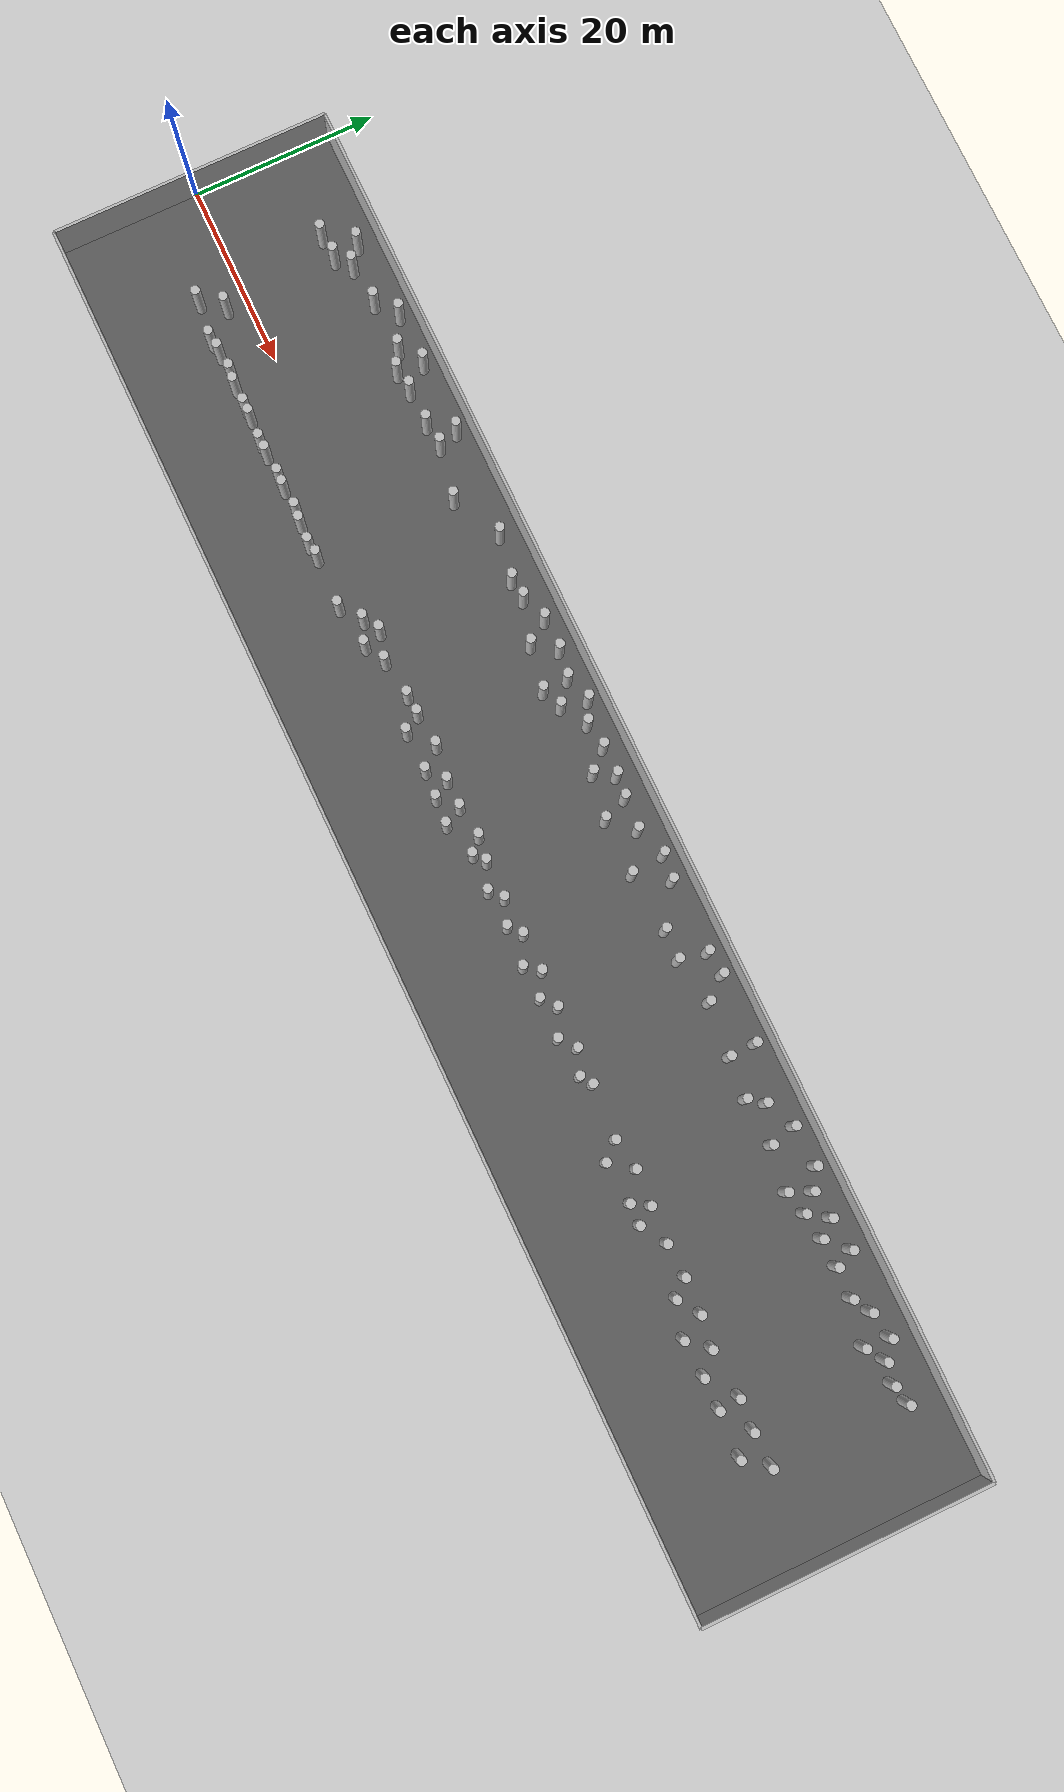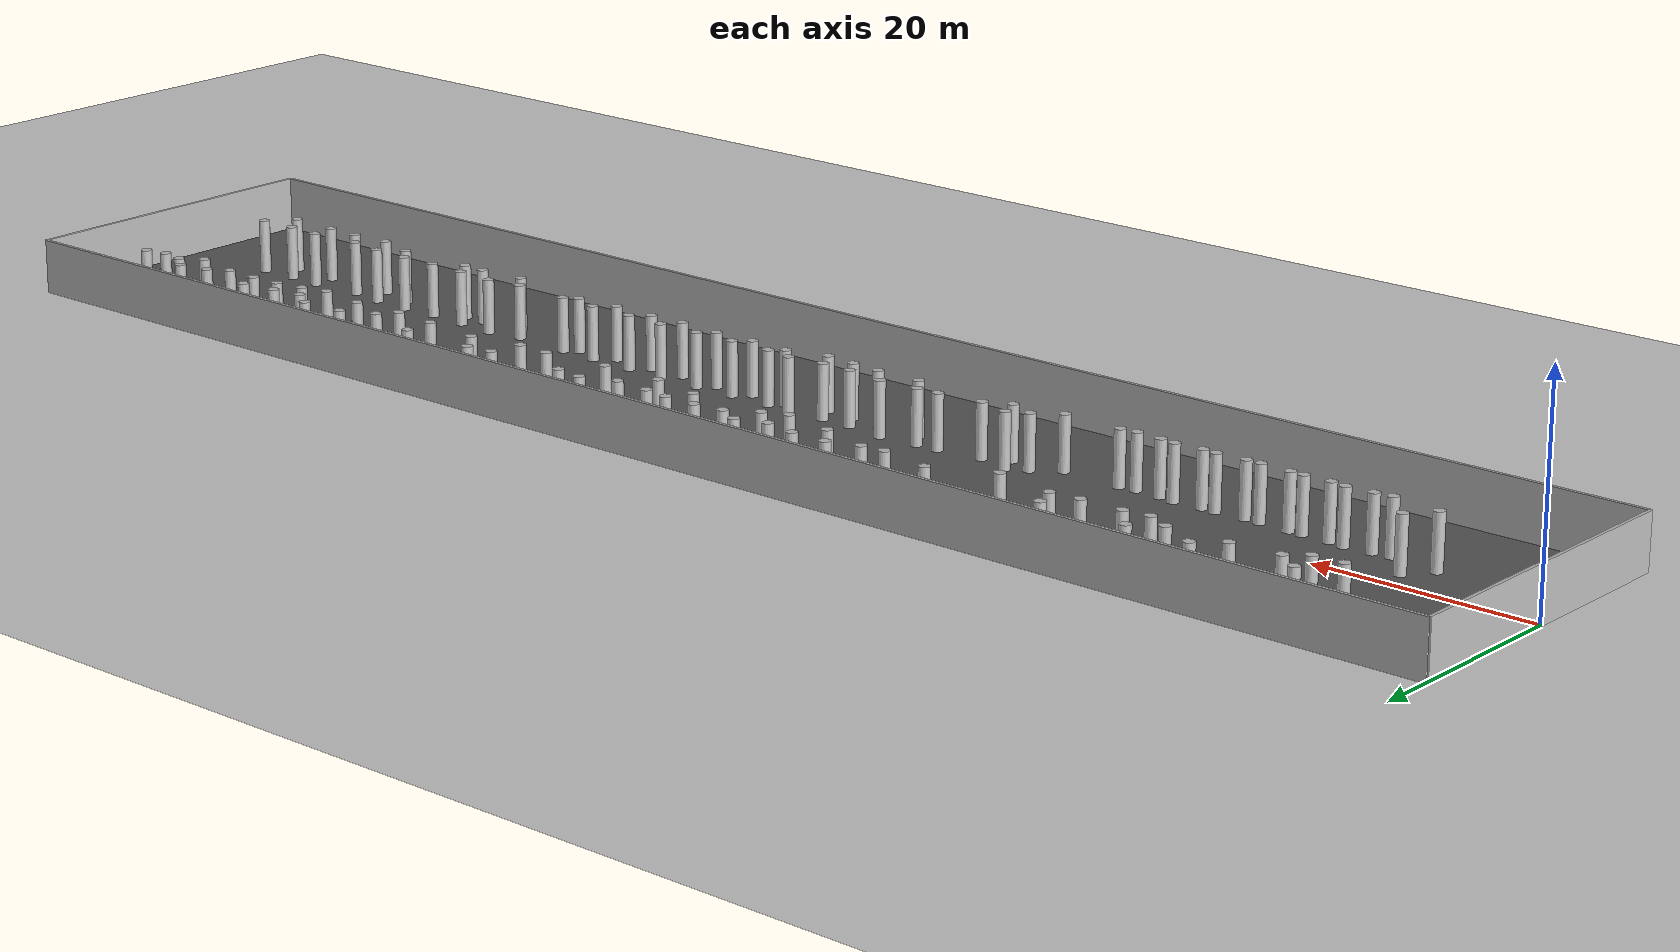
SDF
<?xml version="1.0" ?>
<sdf version="1.5">
  <world name="default">
    <plugin name="gazebo_ros_state" filename="libgazebo_ros_state.so">
      <ros>
        <namespace>/gazebo</namespace>
      </ros>
      <update_rate>20.0</update_rate>
    </plugin>

    <include><uri>model://sun</uri></include>
    <include><uri>model://ground_plane</uri></include>

    <model name="corridor_floor">
      <static>true</static>
      <pose>75 0 0.01 0 0 0</pose>
      <link name="link">
        <collision name="collision">
          <geometry><box><size>150 30 0.02</size></box></geometry>
        </collision>
        <visual name="visual">
          <geometry><box><size>150 30 0.02</size></box></geometry>
          <material>
            <ambient>0.25 0.25 0.25 1</ambient>
            <diffuse>0.35 0.35 0.35 1</diffuse>
          </material>
        </visual>
      </link>
    </model>

    <physics name="default_physics" default="0" type="ode">
      <gravity>0 0 -9.8066</gravity>
      <ode>
        <solver>
          <type>quick</type>
          <iters>10</iters>
          <sor>1.3</sor>
          <use_dynamic_moi_rescaling>0</use_dynamic_moi_rescaling>
        </solver>
        <constraints>
          <cfm>0</cfm>
          <erp>0.2</erp>
          <contact_max_correcting_vel>100</contact_max_correcting_vel>
          <contact_surface_layer>0.001</contact_surface_layer>
        </constraints>
      </ode>
      <max_step_size>0.004</max_step_size>
      <real_time_factor>1</real_time_factor>
      <real_time_update_rate>250</real_time_update_rate>
      <magnetic_field>6.0e-6 2.3e-5 -4.2e-5</magnetic_field>
    </physics>

    <model name="left_wall">
      <static>true</static>
      <pose>75 15.15 2.5 0 0 0</pose>
      <link name="link">
        <collision name="collision">
          <geometry><box><size>150 0.3 5</size></box></geometry>
        </collision>
        <visual name="visual">
          <geometry><box><size>150 0.3 5</size></box></geometry>
        </visual>
      </link>
    </model>

    <model name="right_wall">
      <static>true</static>
      <pose>75 -15.15 2.5 0 0 0</pose>
      <link name="link">
        <collision name="collision">
          <geometry><box><size>150 0.3 5</size></box></geometry>
        </collision>
        <visual name="visual">
          <geometry><box><size>150 0.3 5</size></box></geometry>
        </visual>
      </link>
    </model>

    <model name="start_wall">
      <static>true</static>
      <pose>0 0 2.5 0 0 0</pose>
      <link name="link">
        <collision name="collision">
          <geometry><box><size>0.3 30.3 5</size></box></geometry>
        </collision>
        <visual name="visual">
          <geometry><box><size>0.3 30.3 5</size></box></geometry>
        </visual>
      </link>
    </model>

    <model name="end_wall">
      <static>true</static>
      <pose>150 0 2.5 0 0 0</pose>
      <link name="link">
        <collision name="collision">
          <geometry><box><size>0.3 30.3 5</size></box></geometry>
        </collision>
        <visual name="visual">
          <geometry><box><size>0.3 30.3 5</size></box></geometry>
        </visual>
      </link>
    </model>

    <include><name>cylinder_000</name><uri>model://cylinder_r05_h5</uri><pose>16.262 -5.188 2.5 0 0 0</pose></include>
    <include><name>cylinder_001</name><uri>model://cylinder_r05_h5</uri><pose>17.860 -4.981 2.5 0 0 0</pose></include>
    <include><name>cylinder_002</name><uri>model://cylinder_r05_h5</uri><pose>20.341 -4.798 2.5 0 0 0</pose></include>
    <include><name>cylinder_003</name><uri>model://cylinder_r05_h5</uri><pose>21.768 -4.996 2.5 0 0 0</pose></include>
    <include><name>cylinder_004</name><uri>model://cylinder_r05_h5</uri><pose>24.263 -4.966 2.5 0 0 0</pose></include>
    <include><name>cylinder_005</name><uri>model://cylinder_r05_h5</uri><pose>25.493 -4.968 2.5 0 0 0</pose></include>
    <include><name>cylinder_006</name><uri>model://cylinder_r05_h5</uri><pose>28.320 -5.095 2.5 0 0 0</pose></include>
    <include><name>cylinder_007</name><uri>model://cylinder_r05_h5</uri><pose>29.697 -5.075 2.5 0 0 0</pose></include>
    <include><name>cylinder_008</name><uri>model://cylinder_r05_h5</uri><pose>32.422 -4.901 2.5 0 0 0</pose></include>
    <include><name>cylinder_009</name><uri>model://cylinder_r05_h5</uri><pose>33.720 -4.961 2.5 0 0 0</pose></include>
    <include><name>cylinder_010</name><uri>model://cylinder_r05_h5</uri><pose>36.351 -4.779 2.5 0 0 0</pose></include>
    <include><name>cylinder_011</name><uri>model://cylinder_r05_h5</uri><pose>37.794 -4.961 2.5 0 0 0</pose></include>
    <include><name>cylinder_012</name><uri>model://cylinder_r05_h5</uri><pose>40.190 -5.074 2.5 0 0 0</pose></include>
    <include><name>cylinder_013</name><uri>model://cylinder_r05_h5</uri><pose>41.747 -4.901 2.5 0 0 0</pose></include>
    <include><name>cylinder_014</name><uri>model://cylinder_r05_h5</uri><pose>69.159 -4.469 2.5 0 0 0</pose></include>
    <include><name>cylinder_015</name><uri>model://cylinder_r05_h5</uri><pose>49.636 -3.397 2.5 0 0 0</pose></include>
    <include><name>cylinder_016</name><uri>model://cylinder_r05_h5</uri><pose>72.038 -4.664 2.5 0 0 0</pose></include>
    <include><name>cylinder_017</name><uri>model://cylinder_r05_h5</uri><pose>64.352 -2.203 2.5 0 0 0</pose></include>
    <include><name>cylinder_018</name><uri>model://cylinder_r05_h5</uri><pose>58.576 -2.658 2.5 0 0 0</pose></include>
    <include><name>cylinder_019</name><uri>model://cylinder_r05_h5</uri><pose>54.397 -3.199 2.5 0 0 0</pose></include>
    <include><name>cylinder_020</name><uri>model://cylinder_r05_h5</uri><pose>61.920 -4.291 2.5 0 0 0</pose></include>
    <include><name>cylinder_021</name><uri>model://cylinder_r05_h5</uri><pose>52.114 -4.364 2.5 0 0 0</pose></include>
    <include><name>cylinder_022</name><uri>model://cylinder_r05_h5</uri><pose>74.383 -2.260 2.5 0 0 0</pose></include>
    <include><name>cylinder_023</name><uri>model://cylinder_r05_h5</uri><pose>70.972 -2.729 2.5 0 0 0</pose></include>
    <include><name>cylinder_024</name><uri>model://cylinder_r05_h5</uri><pose>68.018 -2.708 2.5 0 0 0</pose></include>
    <include><name>cylinder_025</name><uri>model://cylinder_r05_h5</uri><pose>66.216 -4.235 2.5 0 0 0</pose></include>
    <include><name>cylinder_026</name><uri>model://cylinder_r05_h5</uri><pose>51.393 -2.389 2.5 0 0 0</pose></include>
    <include><name>cylinder_027</name><uri>model://cylinder_r05_h5</uri><pose>47.371 -5.063 2.5 0 0 0</pose></include>
    <include><name>cylinder_028</name><uri>model://cylinder_r05_h5</uri><pose>60.676 -2.556 2.5 0 0 0</pose></include>
    <include><name>cylinder_029</name><uri>model://cylinder_r05_h5</uri><pose>76.985 -2.628 2.5 0 0 0</pose></include>
    <include><name>cylinder_030</name><uri>model://cylinder_r05_h5</uri><pose>75.850 -3.582 2.5 0 0 0</pose></include>
    <include><name>cylinder_031</name><uri>model://cylinder_r05_h5</uri><pose>81.039 -2.594 2.5 0 0 0</pose></include>
    <include><name>cylinder_032</name><uri>model://cylinder_r05_h5</uri><pose>79.730 -3.761 2.5 0 0 0</pose></include>
    <include><name>cylinder_033</name><uri>model://cylinder_r05_h5</uri><pose>84.984 -2.436 2.5 0 0 0</pose></include>
    <include><name>cylinder_034</name><uri>model://cylinder_r05_h5</uri><pose>83.667 -3.563 2.5 0 0 0</pose></include>
    <include><name>cylinder_035</name><uri>model://cylinder_r05_h5</uri><pose>89.031 -2.310 2.5 0 0 0</pose></include>
    <include><name>cylinder_036</name><uri>model://cylinder_r05_h5</uri><pose>87.860 -3.831 2.5 0 0 0</pose></include>
    <include><name>cylinder_037</name><uri>model://cylinder_r05_h5</uri><pose>92.875 -2.435 2.5 0 0 0</pose></include>
    <include><name>cylinder_038</name><uri>model://cylinder_r05_h5</uri><pose>91.377 -3.688 2.5 0 0 0</pose></include>
    <include><name>cylinder_039</name><uri>model://cylinder_r05_h5</uri><pose>97.240 -2.442 2.5 0 0 0</pose></include>
    <include><name>cylinder_040</name><uri>model://cylinder_r05_h5</uri><pose>95.599 -3.761 2.5 0 0 0</pose></include>
    <include><name>cylinder_041</name><uri>model://cylinder_r05_h5</uri><pose>101.002 -2.593 2.5 0 0 0</pose></include>
    <include><name>cylinder_042</name><uri>model://cylinder_r05_h5</uri><pose>99.797 -3.407 2.5 0 0 0</pose></include>
    <include><name>cylinder_043</name><uri>model://cylinder_r05_h5</uri><pose>106.652 -2.918 2.5 0 0 0</pose></include>
    <include><name>cylinder_044</name><uri>model://cylinder_r05_h5</uri><pose>117.542 -2.745 2.5 0 0 0</pose></include>
    <include><name>cylinder_045</name><uri>model://cylinder_r05_h5</uri><pose>124.817 -2.704 2.5 0 0 0</pose></include>
    <include><name>cylinder_046</name><uri>model://cylinder_r05_h5</uri><pose>121.072 -2.561 2.5 0 0 0</pose></include>
    <include><name>cylinder_047</name><uri>model://cylinder_r05_h5</uri><pose>113.730 -2.567 2.5 0 0 0</pose></include>
    <include><name>cylinder_048</name><uri>model://cylinder_r05_h5</uri><pose>114.922 -4.343 2.5 0 0 0</pose></include>
    <include><name>cylinder_049</name><uri>model://cylinder_r05_h5</uri><pose>130.107 -5.003 2.5 0 0 0</pose></include>
    <include><name>cylinder_050</name><uri>model://cylinder_r05_h5</uri><pose>110.002 -2.346 2.5 0 0 0</pose></include>
    <include><name>cylinder_051</name><uri>model://cylinder_r05_h5</uri><pose>133.383 -5.016 2.5 0 0 0</pose></include>
    <include><name>cylinder_052</name><uri>model://cylinder_r05_h5</uri><pose>128.110 -3.150 2.5 0 0 0</pose></include>
    <include><name>cylinder_053</name><uri>model://cylinder_r05_h5</uri><pose>133.203 -2.799 2.5 0 0 0</pose></include>
    <include><name>cylinder_054</name><uri>model://cylinder_r05_h5</uri><pose>112.673 -4.287 2.5 0 0 0</pose></include>
    <include><name>cylinder_055</name><uri>model://cylinder_r05_h5</uri><pose>126.242 -5.220 2.5 0 0 0</pose></include>
    <include><name>cylinder_056</name><uri>model://cylinder_r05_h5</uri><pose>108.249 -4.683 2.5 0 0 0</pose></include>
    <include><name>cylinder_057</name><uri>model://cylinder_r05_h5</uri><pose>122.553 -4.204 2.5 0 0 0</pose></include>
    <include><name>cylinder_058</name><uri>model://cylinder_r05_h5</uri><pose>11.821 -4.628 2.5 0 0 0</pose></include>
    <include><name>cylinder_059</name><uri>model://cylinder_r05_h5</uri><pose>13.603 -2.343 2.5 0 0 0</pose></include>
    <include><name>cylinder_060</name><uri>model://cylinder_r05_h5</uri><pose>140.166 -2.842 2.5 0 0 0</pose></include>
    <include><name>cylinder_061</name><uri>model://cylinder_r05_h5</uri><pose>136.501 -2.950 2.5 0 0 0</pose></include>
    <include><name>cylinder_062</name><uri>model://cylinder_r05_h5</uri><pose>138.202 -5.197 2.5 0 0 0</pose></include>
    <include><name>cylinder_063</name><uri>model://cylinder_r05_h5</uri><pose>74.666 12.652 2.5 0 0 0</pose></include>
    <include><name>cylinder_064</name><uri>model://cylinder_r05_h5</uri><pose>90.521 10.282 2.5 0 0 0</pose></include>
    <include><name>cylinder_065</name><uri>model://cylinder_r05_h5</uri><pose>27.349 10.597 2.5 0 0 0</pose></include>
    <include><name>cylinder_066</name><uri>model://cylinder_r05_h5</uri><pose>73.499 10.601 2.5 0 0 0</pose></include>
    <include><name>cylinder_067</name><uri>model://cylinder_r05_h5</uri><pose>33.669 10.958 2.5 0 0 0</pose></include>
    <include><name>cylinder_068</name><uri>model://cylinder_r05_h5</uri><pose>59.047 10.658 2.5 0 0 0</pose></include>
    <include><name>cylinder_069</name><uri>model://cylinder_r05_h5</uri><pose>123.435 10.798 2.5 0 0 0</pose></include>
    <include><name>cylinder_070</name><uri>model://cylinder_r05_h5</uri><pose>36.413 11.238 2.5 0 0 0</pose></include>
    <include><name>cylinder_071</name><uri>model://cylinder_r05_h5</uri><pose>77.031 12.379 2.5 0 0 0</pose></include>
    <include><name>cylinder_072</name><uri>model://cylinder_r05_h5</uri><pose>108.520 10.100 2.5 0 0 0</pose></include>
    <include><name>cylinder_073</name><uri>model://cylinder_r05_h5</uri><pose>42.082 10.090 2.5 0 0 0</pose></include>
    <include><name>cylinder_074</name><uri>model://cylinder_r05_h5</uri><pose>47.426 12.726 2.5 0 0 0</pose></include>
    <include><name>cylinder_075</name><uri>model://cylinder_r05_h5</uri><pose>120.630 10.371 2.5 0 0 0</pose></include>
    <include><name>cylinder_076</name><uri>model://cylinder_r05_h5</uri><pose>113.484 10.401 2.5 0 0 0</pose></include>
    <include><name>cylinder_077</name><uri>model://cylinder_r05_h5</uri><pose>94.220 13.094 2.5 0 0 0</pose></include>
    <include><name>cylinder_078</name><uri>model://cylinder_r05_h5</uri><pose>125.536 12.887 2.5 0 0 0</pose></include>
    <include><name>cylinder_079</name><uri>model://cylinder_r05_h5</uri><pose>109.696 11.722 2.5 0 0 0</pose></include>
    <include><name>cylinder_080</name><uri>model://cylinder_r05_h5</uri><pose>83.732 13.363 2.5 0 0 0</pose></include>
    <include><name>cylinder_081</name><uri>model://cylinder_r05_h5</uri><pose>134.387 12.534 2.5 0 0 0</pose></include>
    <include><name>cylinder_082</name><uri>model://cylinder_r05_h5</uri><pose>112.805 13.157 2.5 0 0 0</pose></include>
    <include><name>cylinder_083</name><uri>model://cylinder_r05_h5</uri><pose>93.692 10.136 2.5 0 0 0</pose></include>
    <include><name>cylinder_084</name><uri>model://cylinder_r05_h5</uri><pose>98.650 11.064 2.5 0 0 0</pose></include>
    <include><name>cylinder_085</name><uri>model://cylinder_r05_h5</uri><pose>19.562 11.587 2.5 0 0 0</pose></include>
    <include><name>cylinder_086</name><uri>model://cylinder_r05_h5</uri><pose>63.736 12.479 2.5 0 0 0</pose></include>
    <include><name>cylinder_087</name><uri>model://cylinder_r05_h5</uri><pose>96.795 13.382 2.5 0 0 0</pose></include>
    <include><name>cylinder_088</name><uri>model://cylinder_r05_h5</uri><pose>84.174 9.736 2.5 0 0 0</pose></include>
    <include><name>cylinder_089</name><uri>model://cylinder_r05_h5</uri><pose>27.651 13.400 2.5 0 0 0</pose></include>
    <include><name>cylinder_090</name><uri>model://cylinder_r05_h5</uri><pose>13.029 12.714 2.5 0 0 0</pose></include>
    <include><name>cylinder_091</name><uri>model://cylinder_r05_h5</uri><pose>57.275 13.015 2.5 0 0 0</pose></include>
    <include><name>cylinder_092</name><uri>model://cylinder_r05_h5</uri><pose>138.393 10.822 2.5 0 0 0</pose></include>
    <include><name>cylinder_093</name><uri>model://cylinder_r05_h5</uri><pose>131.486 11.949 2.5 0 0 0</pose></include>
    <include><name>cylinder_094</name><uri>model://cylinder_r05_h5</uri><pose>122.048 12.463 2.5 0 0 0</pose></include>
    <include><name>cylinder_095</name><uri>model://cylinder_r05_h5</uri><pose>86.422 13.011 2.5 0 0 0</pose></include>
    <include><name>cylinder_096</name><uri>model://cylinder_r05_h5</uri><pose>134.148 9.875 2.5 0 0 0</pose></include>
    <include><name>cylinder_097</name><uri>model://cylinder_r05_h5</uri><pose>54.415 12.017 2.5 0 0 0</pose></include>
    <include><name>cylinder_098</name><uri>model://cylinder_r05_h5</uri><pose>10.702 9.719 2.5 0 0 0</pose></include>
    <include><name>cylinder_099</name><uri>model://cylinder_r05_h5</uri><pose>140.498 11.313 2.5 0 0 0</pose></include>
    <include><name>cylinder_100</name><uri>model://cylinder_r05_h5</uri><pose>25.216 11.716 2.5 0 0 0</pose></include>
    <include><name>cylinder_101</name><uri>model://cylinder_r05_h5</uri><pose>15.099 11.230 2.5 0 0 0</pose></include>
    <include><name>cylinder_102</name><uri>model://cylinder_r05_h5</uri><pose>29.741 10.921 2.5 0 0 0</pose></include>
    <include><name>cylinder_103</name><uri>model://cylinder_r05_h5</uri><pose>71.525 12.682 2.5 0 0 0</pose></include>
    <include><name>cylinder_104</name><uri>model://cylinder_r05_h5</uri><pose>118.093 9.719 2.5 0 0 0</pose></include>
    <include><name>cylinder_105</name><uri>model://cylinder_r05_h5</uri><pose>66.034 10.653 2.5 0 0 0</pose></include>
    <include><name>cylinder_106</name><uri>model://cylinder_r05_h5</uri><pose>52.204 11.801 2.5 0 0 0</pose></include>
    <include><name>cylinder_107</name><uri>model://cylinder_r05_h5</uri><pose>104.227 10.506 2.5 0 0 0</pose></include>
    <include><name>cylinder_108</name><uri>model://cylinder_r05_h5</uri><pose>63.849 9.751 2.5 0 0 0</pose></include>
    <include><name>cylinder_109</name><uri>model://cylinder_r05_h5</uri><pose>126.384 10.924 2.5 0 0 0</pose></include>
    <include><name>cylinder_110</name><uri>model://cylinder_r05_h5</uri><pose>35.612 13.416 2.5 0 0 0</pose></include>
    <include><name>cylinder_111</name><uri>model://cylinder_r05_h5</uri><pose>80.474 12.155 2.5 0 0 0</pose></include>
    <include><name>cylinder_112</name><uri>model://cylinder_r05_h5</uri><pose>104.105 13.322 2.5 0 0 0</pose></include>
    <include><name>cylinder_113</name><uri>model://cylinder_r05_h5</uri><pose>129.599 10.847 2.5 0 0 0</pose></include>
    <include><name>cylinder_114</name><uri>model://cylinder_r05_h5</uri><pose>117.053 13.330 2.5 0 0 0</pose></include>
    <include><name>cylinder_115</name><uri>model://cylinder_r05_h5</uri><pose>13.416 9.895 2.5 0 0 0</pose></include>
    <include><name>cylinder_116</name><uri>model://cylinder_r05_h5</uri><pose>66.560 13.409 2.5 0 0 0</pose></include>
    <include><name>cylinder_117</name><uri>model://cylinder_r05_h5</uri><pose>21.824 13.407 2.5 0 0 0</pose></include>
    <include><name>cylinder_118</name><uri>model://cylinder_r05_h5</uri><pose>68.715 12.315 2.5 0 0 0</pose></include>
    <include><name>cylinder_119</name><uri>model://cylinder_r05_h5</uri><pose>136.117 11.181 2.5 0 0 0</pose></include>
    <include><name>cylinder_120</name><uri>model://cylinder_r05_h5</uri><pose>119.082 12.033 2.5 0 0 0</pose></include>
    <include><name>cylinder_121</name><uri>model://cylinder_r05_h5</uri><pose>60.723 13.034 2.5 0 0 0</pose></include>
    <include><name>cylinder_122</name><uri>model://cylinder_r05_h5</uri><pose>78.201 9.710 2.5 0 0 0</pose></include>

  </world>
</sdf>

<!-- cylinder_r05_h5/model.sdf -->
<sdf version="1.5">
  <model name="cylinder_r05_h5">
    <static>true</static>
    <link name="link">
      <collision name="collision">
        <geometry>
          <cylinder>
            <radius>0.5</radius>
            <length>5</length>
          </cylinder>
        </geometry>
      </collision>
      <visual name="visual">
        <geometry>
          <cylinder>
            <radius>0.5</radius>
            <length>5</length>
          </cylinder>
        </geometry>
        <material>
          <ambient>0.5 0.5 0.5 1</ambient>
          <diffuse>0.75 0.75 0.75 1</diffuse>
        </material>
      </visual>
    </link>
  </model>
</sdf>
